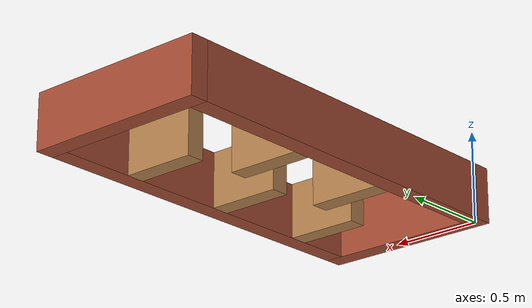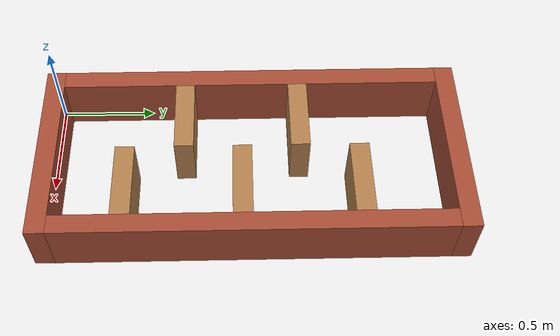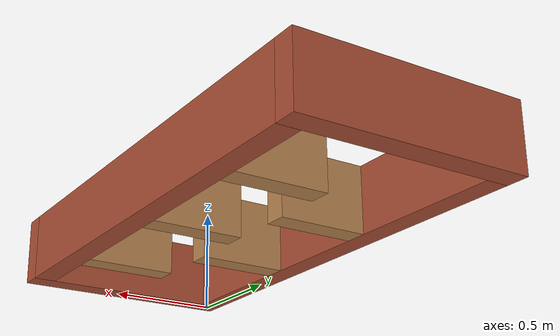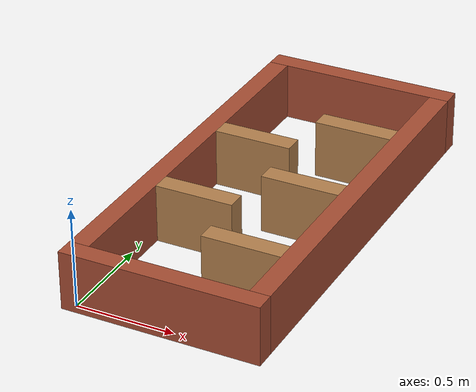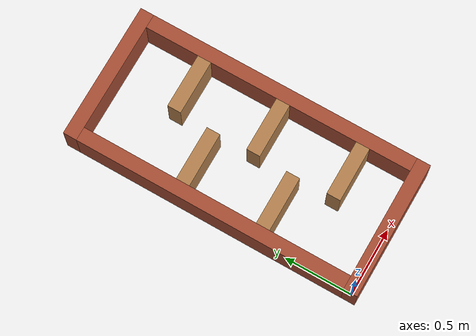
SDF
<?xml version='1.0'?>
<sdf version='1.6'>
  <model name='qmp_square'>
    <pose frame=''>0.45 1.05 0 0 -0 0</pose>
    <link name='Wall_0'>
      <collision name='Wall_0_Collision'>
        <geometry>
          <box>
            <size>1 0.1 0.3</size>
          </box>
        </geometry>
        <pose frame=''>0 0 0.15 0 -0 0</pose>
      </collision>
      <visual name='Wall_0_Visual'>
        <pose frame=''>0 0 0.15 0 -0 0</pose>
        <geometry>
          <box>
            <size>1 0.1 0.3</size>
          </box>
        </geometry>
        <material>
          <script>
            <uri>file://media/materials/scripts/gazebo.material</uri>
            <name>Gazebo/Bricks</name>
          </script>
          <ambient>1 0.764706 0.305882 1</ambient>
        </material>
        <meta>
          <layer>0</layer>
        </meta>
      </visual>
      <pose frame=''>-0 -1.05 0 0 -0 0</pose>
    </link>
    <link name='Wall_10'>
      <collision name='Wall_10_Collision'>
        <geometry>
          <box>
            <size>0.4 0.1 0.3</size>
          </box>
        </geometry>
        <pose frame=''>0 0 0.15 0 -0 0</pose>
      </collision>
      <visual name='Wall_10_Visual'>
        <pose frame=''>0 0 0.15 0 -0 0</pose>
        <geometry>
          <box>
            <size>0.4 0.1 0.3</size>
          </box>
        </geometry>
        <material>
          <script>
            <uri>file://media/materials/scripts/gazebo.material</uri>
            <name>Gazebo/Wood</name>
          </script>
          <ambient>0.760784 0.662745 0.627451 1</ambient>
        </material>
        <meta>
          <layer>0</layer>
        </meta>
      </visual>
      <pose frame=''>0.2 -0.05 0 0 -0 3.14159</pose>
    </link>
    <link name='Wall_12'>
      <collision name='Wall_12_Collision'>
        <geometry>
          <box>
            <size>0.4 0.1 0.3</size>
          </box>
        </geometry>
        <pose frame=''>0 0 0.15 0 -0 0</pose>
      </collision>
      <visual name='Wall_12_Visual'>
        <pose frame=''>0 0 0.15 0 -0 0</pose>
        <geometry>
          <box>
            <size>0.4 0.1 0.3</size>
          </box>
        </geometry>
        <material>
          <script>
            <uri>file://media/materials/scripts/gazebo.material</uri>
            <name>Gazebo/Wood</name>
          </script>
          <ambient>0.760784 0.662745 0.627451 1</ambient>
        </material>
        <meta>
          <layer>0</layer>
        </meta>
      </visual>
      <pose frame=''>0.2 0.55 0 0 -0 3.14159</pose>
    </link>
    <link name='Wall_14'>
      <collision name='Wall_14_Collision'>
        <geometry>
          <box>
            <size>0.4 0.1 0.3</size>
          </box>
        </geometry>
        <pose frame=''>0 0 0.15 0 -0 0</pose>
      </collision>
      <visual name='Wall_14_Visual'>
        <pose frame=''>0 0 0.15 0 -0 0</pose>
        <geometry>
          <box>
            <size>0.4 0.1 0.3</size>
          </box>
        </geometry>
        <material>
          <script>
            <uri>file://media/materials/scripts/gazebo.material</uri>
            <name>Gazebo/Wood</name>
          </script>
          <ambient>0.760784 0.662745 0.627451 1</ambient>
        </material>
        <meta>
          <layer>0</layer>
        </meta>
      </visual>
      <pose frame=''>-0.2 -0.35 0 0 -0 3.14159</pose>
    </link>
    <link name='Wall_16'>
      <collision name='Wall_16_Collision'>
        <geometry>
          <box>
            <size>0.4 0.1 0.3</size>
          </box>
        </geometry>
        <pose frame=''>0 0 0.15 0 -0 0</pose>
      </collision>
      <visual name='Wall_16_Visual'>
        <pose frame=''>0 0 0.15 0 -0 0</pose>
        <geometry>
          <box>
            <size>0.4 0.1 0.3</size>
          </box>
        </geometry>
        <material>
          <script>
            <uri>file://media/materials/scripts/gazebo.material</uri>
            <name>Gazebo/Wood</name>
          </script>
          <ambient>0.760784 0.662745 0.627451 1</ambient>
        </material>
        <meta>
          <layer>0</layer>
        </meta>
      </visual>
      <pose frame=''>-0.2 0.25 0 0 -0 3.14159</pose>
    </link>
    <link name='Wall_2'>
      <collision name='Wall_2_Collision'>
        <geometry>
          <box>
            <size>2 0.1 0.3</size>
          </box>
        </geometry>
        <pose frame=''>0 0 0.15 0 -0 0</pose>
      </collision>
      <visual name='Wall_2_Visual'>
        <pose frame=''>0 0 0.15 0 -0 0</pose>
        <geometry>
          <box>
            <size>2 0.1 0.3</size>
          </box>
        </geometry>
        <material>
          <script>
            <uri>file://media/materials/scripts/gazebo.material</uri>
            <name>Gazebo/Bricks</name>
          </script>
          <ambient>1 0.764706 0.305882 1</ambient>
        </material>
        <meta>
          <layer>0</layer>
        </meta>
      </visual>
      <pose frame=''>-0.45 0 0 0 -0 1.5708</pose>
    </link>
    <link name='Wall_4'>
      <collision name='Wall_4_Collision'>
        <geometry>
          <box>
            <size>2 0.1 0.3</size>
          </box>
        </geometry>
        <pose frame=''>0 0 0.15 0 -0 0</pose>
      </collision>
      <visual name='Wall_4_Visual'>
        <pose frame=''>0 0 0.15 0 -0 0</pose>
        <geometry>
          <box>
            <size>2 0.1 0.3</size>
          </box>
        </geometry>
        <material>
          <script>
            <uri>file://media/materials/scripts/gazebo.material</uri>
            <name>Gazebo/Bricks</name>
          </script>
          <ambient>1 0.764706 0.305882 1</ambient>
        </material>
        <meta>
          <layer>0</layer>
        </meta>
      </visual>
      <pose frame=''>0.45 0 0 0 -0 1.5708</pose>
    </link>
    <link name='Wall_6'>
      <collision name='Wall_6_Collision'>
        <geometry>
          <box>
            <size>1 0.1 0.3</size>
          </box>
        </geometry>
        <pose frame=''>0 0 0.15 0 -0 0</pose>
      </collision>
      <visual name='Wall_6_Visual'>
        <pose frame=''>0 0 0.15 0 -0 0</pose>
        <geometry>
          <box>
            <size>1 0.1 0.3</size>
          </box>
        </geometry>
        <material>
          <script>
            <uri>file://media/materials/scripts/gazebo.material</uri>
            <name>Gazebo/Bricks</name>
          </script>
          <ambient>1 0.764706 0.305882 1</ambient>
        </material>
        <meta>
          <layer>0</layer>
        </meta>
      </visual>
      <pose frame=''>-0 1.05 0 0 -0 0</pose>
    </link>
    <link name='Wall_8'>
      <collision name='Wall_8_Collision'>
        <geometry>
          <box>
            <size>0.4 0.1 0.3</size>
          </box>
        </geometry>
        <pose frame=''>0 0 0.15 0 -0 0</pose>
      </collision>
      <visual name='Wall_8_Visual'>
        <pose frame=''>0 0 0.15 0 -0 0</pose>
        <geometry>
          <box>
            <size>0.4 0.1 0.3</size>
          </box>
        </geometry>
        <material>
          <script>
            <uri>file://media/materials/scripts/gazebo.material</uri>
            <name>Gazebo/Wood</name>
          </script>
          <ambient>0.760784 0.662745 0.627451 1</ambient>
        </material>
        <meta>
          <layer>0</layer>
        </meta>
      </visual>
      <pose frame=''>0.2 -0.65 0 0 -0 3.14159</pose>
    </link>
    <static>1</static>
  </model>
</sdf>
